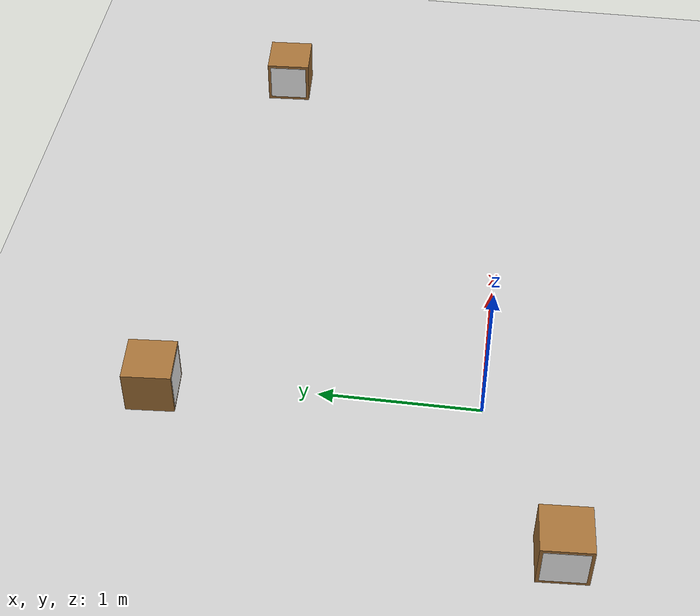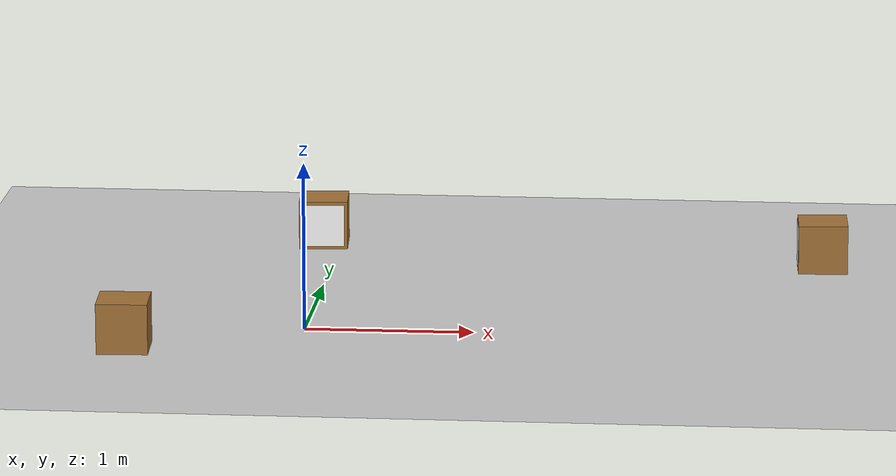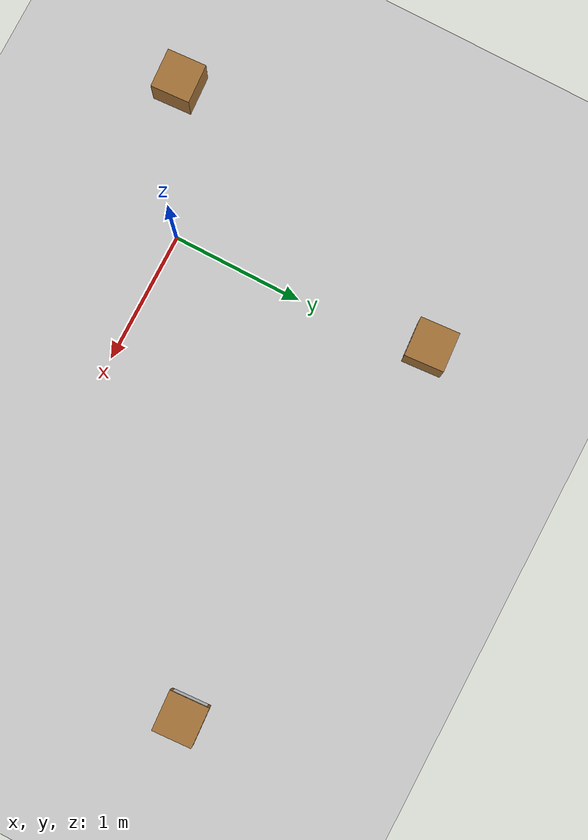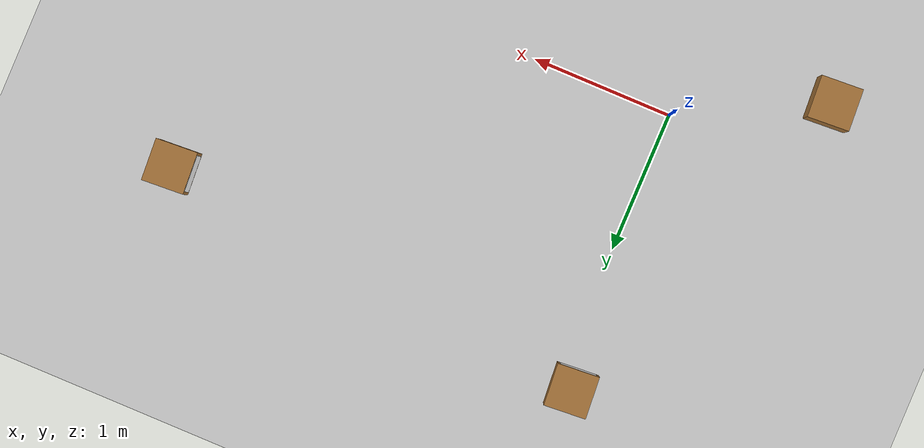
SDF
<sdf version="1.6">
 <world name="warehouse">
  <plugin filename="gz-sim-physics-system" name="gz::sim::systems::Physics"/>
  <plugin filename="gz-sim-user-commands-system" name="gz::sim::systems::UserCommands"/>
  <plugin filename="gz-sim-scene-broadcaster-system" name="gz::sim::systems::SceneBroadcaster"/>
  <plugin filename="gz-sim-sensors-system" name="gz::sim::systems::Sensors">
   <render_engine>ogre2</render_engine>
  </plugin>
  <light type="directional" name="sun">
   <pose>0 0 10 0 0 0</pose>
   <diffuse>0.8 0.8 0.8 1</diffuse>
   <specular>0.2 0.2 0.2 1</specular>
   <attenuation>
    <range>1000</range>
    <constant>0.9</constant>
    <linear>0.01</linear>
    <quadratic>0.001</quadratic>
   </attenuation>
   <direction>-0.5 0.1 -0.9</direction>
  </light>
  <model name="ground_plane">
   <static>true</static>
   <link name="link">
    <collision name="collision">
     <geometry><plane><normal>0 0 1</normal><size>100 100</size></plane></geometry>
    </collision>
    <visual name="visual">
     <geometry><plane><normal>0 0 1</normal><size>100 100</size></plane></geometry>
     <material>
      <ambient>0.8 0.8 0.8 1</ambient>
      <diffuse>0.8 0.8 0.8 1</diffuse>
      <specular>0.8 0.8 0.8 1</specular>
     </material>
    </visual>
   </link>
  </model>
  <include><uri>model://caja_qr</uri><name>caja_qr_001</name><pose>-1 -0.5 0.15 0 0 3.2</pose></include>
  <include>
   <uri>model://caja_qr</uri>
   <name>caja_qr_002</name>
   <pose>-0.109229404851794243 1.9969335794448853 0.15 0 0 -1.5</pose>
  </include>
  <include>
   <uri>model://caja_qr</uri>
   <name>caja_qr_003</name>
   <pose>3.0002878665924072 1.650303602218628 0.15 0 0 3.2</pose>
  </include>
 </world>
</sdf>

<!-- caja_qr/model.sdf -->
<sdf version="1.9">
  <model name="caja_qr">

    <!-- La caja es estática: no rueda ni se mueve por física -->
    <static>true</static>

    <link name="caja_link">

      <!-- ── Pose del centro de masa: encima del suelo ── -->
      <pose>0 0 0 0 0 0</pose>

      <!-- ── Inercia (ligera, es estática pero se define por buena práctica) ── -->
      <inertial>
        <mass>2.0</mass>
        <inertia>
          <ixx>0.015</ixx> <ixy>0</ixy> <ixz>0</ixz>
          <iyy>0.015</iyy> <iyz>0</iyz>
          <izz>0.015</izz>
        </inertia>
      </inertial>

      <!-- ── Colisión: cuerpo principal de la caja ── -->
      <collision name="caja_col">
        <geometry>
          <box>
            <size>0.30 0.30 0.30</size>
          </box>
        </geometry>
        <surface>
          <friction>
            <ode><mu>0.8</mu><mu2>0.8</mu2></ode>
          </friction>
        </surface>
      </collision>

      <!-- ── Visual 1: cuerpo de cartón marrón ── -->
      <visual name="cuerpo_visual">
        <geometry>
          <box>
            <size>0.30 0.30 0.30</size>
          </box>
        </geometry>
        <material>
          <!-- Color cartón -->
          <ambient>0.55 0.38 0.18 1</ambient>
          <diffuse>0.65 0.45 0.22 1</diffuse>
          <specular>0.05 0.05 0.05 1</specular>
        </material>
      </visual>

      <visual name="qr_visual">
        <pose>0.151 0 0  0 0 0</pose>
        <geometry>
          <box>
            <!-- Grosor mínimo × ancho del panel × alto del panel -->
            <size>0.001 0.26 0.26</size>
          </box>
        </geometry>
        <material>
          <pbr>
            <metal>
              <albedo_map>model://caja_qr/materials/textures/QR-prueba1.png</albedo_map>
              <metalness>0.0</metalness>
              <roughness>0.9</roughness>
            </metal>
          </pbr>
          <ambient>1 1 1 1</ambient>
          <diffuse>1 1 1 1</diffuse>
          <!-- Desactivar mipmapping para preservar los módulos del QR nítidos -->
          <script>
            <uri>model://caja_qr/materials/scripts/qr.material</uri>
            <name>CarryBot/QRCode</name>
          </script>
        </material>
      </visual>

    </link>
  </model>
</sdf>
